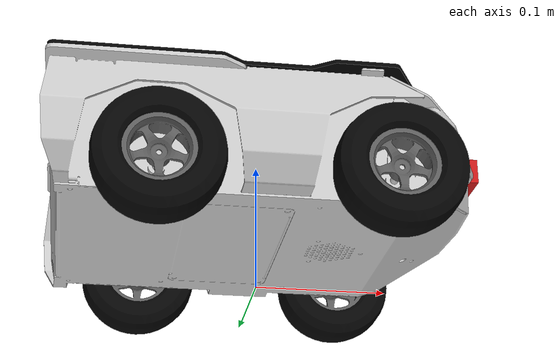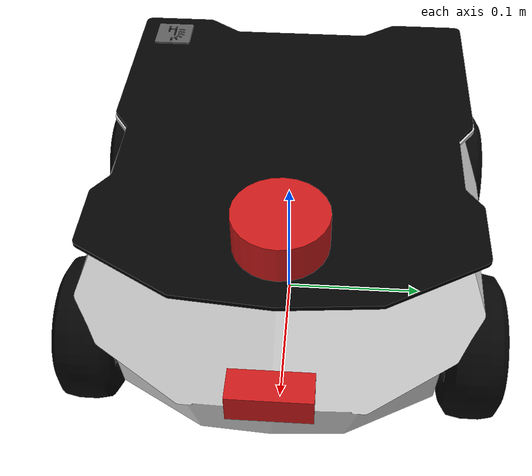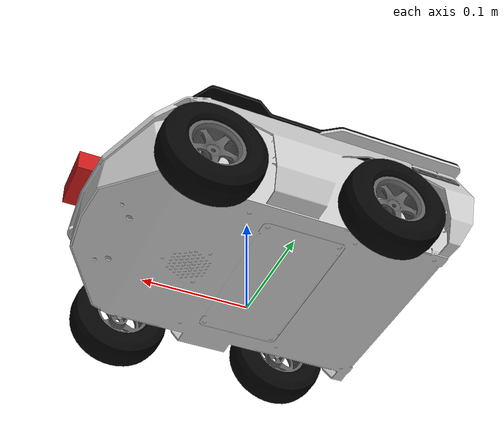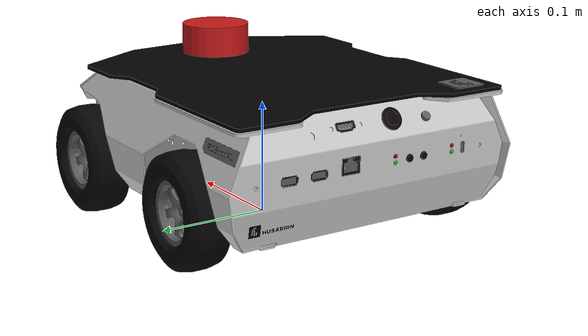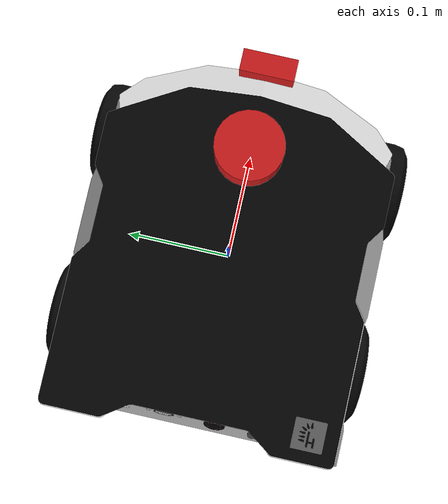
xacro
<?xml version="1.0"?>
<robot xmlns:xacro="http://www.ros.org/wiki/xacro" name="medbot">
  <xacro:include filename="$(find medbot_description)/urdf/base.xacro"/>
  <xacro:include filename="$(find medbot_description)/urdf/sensors.xacro"/>
  <xacro:include filename="$(find medbot_description)/urdf/ros2_control.xacro"/>
</robot>

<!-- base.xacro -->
<robot xmlns:xacro="http://www.ros.org/wiki/xacro">

  <!-- ============ parameters (real ROSbot XL non-mecanum values) ============ -->
  <xacro:property name="wheel_radius"    value="0.048"/>
  <xacro:property name="wheel_thickness" value="0.036"/>
  <xacro:property name="wheel_mass"      value="0.051"/>

  <xacro:property name="wheel_xoff" value="0.085"/>  <!-- half wheelbase (0.170 total) -->
  <xacro:property name="wheel_yoff" value="0.124"/>  <!-- half track  (0.248 total) -->

  <xacro:property name="mesh_pkg" value="package://rosbot_description/meshes/rosbot_xl"/>

  <!-- ============ base_footprint (nav frame at ground) ============ -->
  <link name="base_footprint"/>

  <joint name="base_joint" type="fixed">
    <parent link="base_footprint"/>
    <child  link="base_link"/>
    <origin xyz="0 0 ${wheel_radius}" rpy="0 0 0"/>
  </joint>

  <!-- ============ chassis (official body mesh) ============ -->
  <link name="base_link">
    <visual>
      <geometry><mesh filename="${mesh_pkg}/body.dae" scale="1 1 1"/></geometry>
    </visual>
    <collision>
      <geometry><mesh filename="${mesh_pkg}/body_colision.stl" scale="1 1 1"/></geometry>
    </collision>
    <inertial>
      <mass value="3.5"/>
      <origin xyz="0 0 0.0358" rpy="0 0 0"/>
      <inertia ixx="0.01393" ixy="-0.000020968097" ixz="0.000010399694"
               iyy="0.01081" iyz="0.000059372953" izz="0.02048"/>
    </inertial>
  </link>

  <!-- ============ wheel macro (official meshes, our joint naming) ============ -->
  <xacro:macro name="wheel" params="name x y mesh_letter rot">
    <link name="${name}_wheel">
      <visual>
        <origin xyz="0 0 0" rpy="0 0 ${rot}"/>
        <geometry><mesh filename="${mesh_pkg}/wheel_${mesh_letter}.dae" scale="1 1 1"/></geometry>
      </visual>
      <collision>
        <origin xyz="0 0 0" rpy="1.5708 0 0"/>
        <geometry><cylinder radius="${wheel_radius}" length="${wheel_thickness}"/></geometry>
      </collision>
      <inertial>
        <mass value="${wheel_mass}"/>
        <inertia ixx="0.000050587413" ixy="0.0" ixz="0.0"
                 iyy="0.000085933192" iyz="0.0" izz="0.000050587829"/>
      </inertial>
    </link>

    <joint name="${name}_wheel_joint" type="continuous">
      <parent link="base_link"/>
      <child  link="${name}_wheel"/>
      <origin xyz="${x} ${y} 0" rpy="0 0 0"/>
      <axis xyz="0 1 0"/>
    </joint>

    <gazebo reference="${name}_wheel">
      <collision>
        <surface>
          <friction>
            <ode><mu>1</mu><mu2>1</mu2><slip1>0.035</slip1><slip2>0</slip2></ode>
          </friction>
        </surface>
      </collision>
    </gazebo>
  </xacro:macro>

  <xacro:wheel name="front_left"  x="${wheel_xoff}"  y="${wheel_yoff}"  mesh_letter="b" rot="3.14159"/>
  <xacro:wheel name="front_right" x="${wheel_xoff}"  y="${-wheel_yoff}" mesh_letter="a" rot="3.14159"/>
  <xacro:wheel name="rear_left"   x="${-wheel_xoff}" y="${wheel_yoff}"  mesh_letter="a" rot="0"/>
  <xacro:wheel name="rear_right"  x="${-wheel_xoff}" y="${-wheel_yoff}" mesh_letter="b" rot="0"/>

</robot>

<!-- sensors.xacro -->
<robot xmlns:xacro="http://www.ros.org/wiki/xacro">

  <material name="sensor_red"><color rgba="0.8 0.1 0.1 1.0"/></material>

  <!-- =============== LiDAR =============== -->
  <link name="lidar_link">
    <visual>
      <geometry><cylinder radius="0.03" length="0.04"/></geometry>
      <material name="sensor_red"/>
    </visual>
    <collision><geometry><cylinder radius="0.03" length="0.04"/></geometry></collision>
    <inertial>
      <mass value="0.1"/>
      <inertia ixx="1e-4" ixy="0" ixz="0" iyy="1e-4" iyz="0" izz="1e-4"/>
    </inertial>
  </link>
  <joint name="lidar_joint" type="fixed">
    <parent link="base_link"/>
    <child  link="lidar_link"/>
    <origin xyz="0.08 0 0.09" rpy="0 0 0"/>
  </joint>

  <gazebo reference="lidar_link">
    <sensor name="lidar" type="gpu_lidar">
      <update_rate>15</update_rate>
      <topic>scan</topic>
      <gz_frame_id>lidar_link</gz_frame_id>
      <lidar>
        <scan>
          <horizontal>
            <samples>1081</samples>
            <resolution>1</resolution>
            <min_angle>-2.356</min_angle>   <!-- -135 deg -->
            <max_angle>2.356</max_angle>    <!--  135 deg -->
          </horizontal>
        </scan>
        <range>
          <min>0.1</min>
          <max>10.0</max>
          <resolution>0.01</resolution>
        </range>
      </lidar>
      <always_on>1</always_on>
      <visualize>true</visualize>
    </sensor>
  </gazebo>

  <!-- =============== Camera =============== -->
  <link name="camera_link">
    <visual>
      <geometry><box size="0.02 0.05 0.02"/></geometry>
      <material name="sensor_red"/>
    </visual>
    <inertial>
      <mass value="0.05"/>
      <inertia ixx="1e-5" ixy="0" ixz="0" iyy="1e-5" iyz="0" izz="1e-5"/>
    </inertial>
  </link>
  <joint name="camera_joint" type="fixed">
    <parent link="base_link"/>
    <child  link="camera_link"/>
    <origin xyz="0.165 0 0.05" rpy="0 0 0"/>
  </joint>

  <!-- optical frame: REP-103 camera convention (z forward, x right, y down) -->
  <link name="camera_optical_link"/>
  <joint name="camera_optical_joint" type="fixed">
    <parent link="camera_link"/>
    <child  link="camera_optical_link"/>
    <origin xyz="0 0 0" rpy="-1.5708 0 -1.5708"/>
  </joint>

  <gazebo reference="camera_link">
    <sensor name="camera" type="camera">
      <update_rate>30</update_rate>
      <topic>camera/image_raw</topic>
      <gz_frame_id>camera_optical_link</gz_frame_id>
      <camera>
        <horizontal_fov>1.047</horizontal_fov>
        <image>
          <width>640</width>
          <height>480</height>
          <format>R8G8B8</format>
        </image>
        <clip>
          <near>0.05</near>
          <far>30.0</far>
        </clip>
        <optical_frame_id>camera_optical_link</optical_frame_id>
        <camera_info_topic>camera/camera_info</camera_info_topic>
      </camera>
      <always_on>1</always_on>
      <visualize>false</visualize>
    </sensor>
  </gazebo>

  <!-- =============== IMU =============== -->
  <link name="imu_link">
    <inertial>
      <mass value="0.02"/>
      <inertia ixx="1e-6" ixy="0" ixz="0" iyy="1e-6" iyz="0" izz="1e-6"/>
    </inertial>
  </link>
  <joint name="imu_joint" type="fixed">
    <parent link="base_link"/>
    <child  link="imu_link"/>
    <origin xyz="0 0 0.02" rpy="0 0 0"/>
  </joint>

  <gazebo reference="imu_link">
    <sensor name="imu" type="imu">
      <update_rate>100</update_rate>
      <topic>imu</topic>
      <gz_frame_id>imu_link</gz_frame_id>
      <always_on>1</always_on>
    </sensor>
  </gazebo>

</robot>
